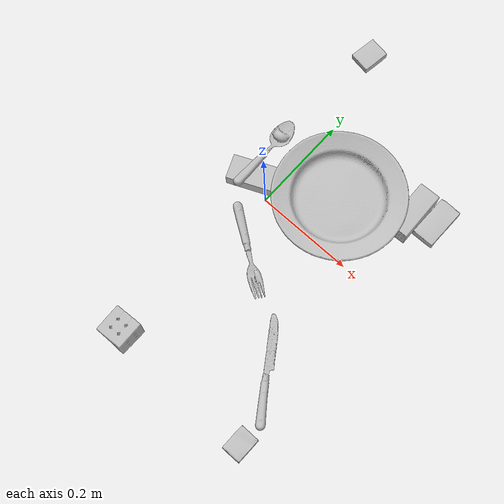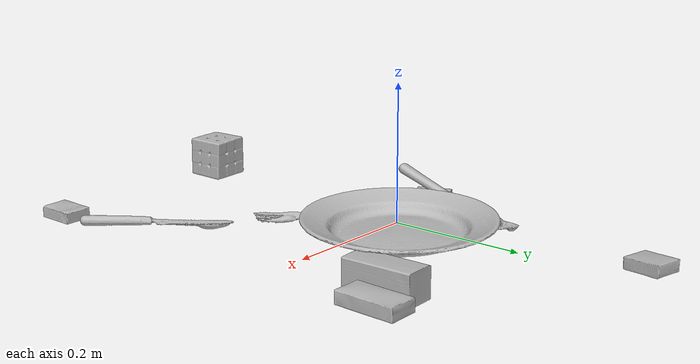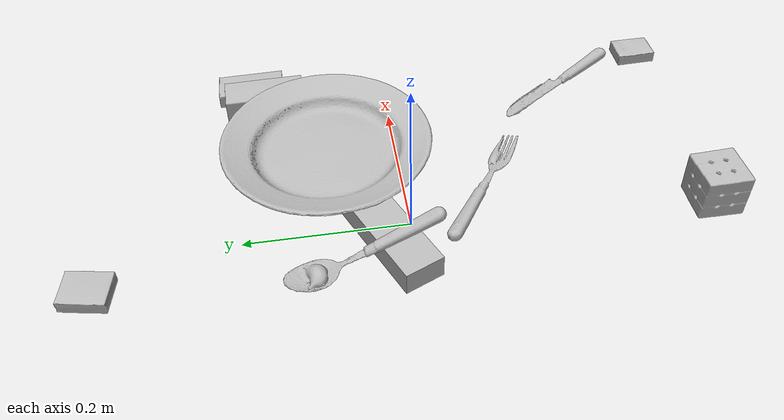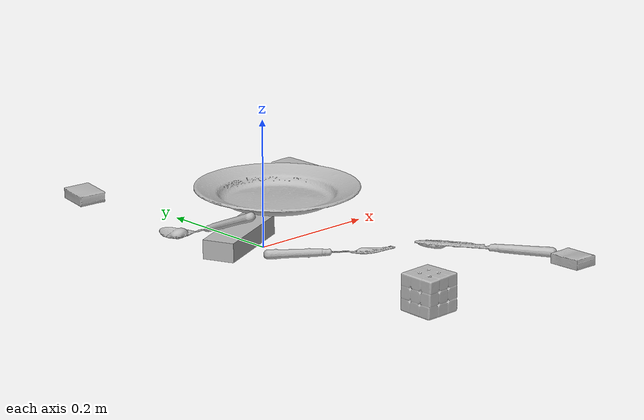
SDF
<sdf version="1.4">
  <world name="default">
    <light name="light1" type="point">
      <pose>0 0 1 0 0 0</pose>
      <diffuse>3 3 3 1</diffuse>
      <specular>3 3 3 1</specular>
    </light>
    <light name="light2" type="point">
      <pose>0 0.5 2 0 0 0</pose>
      <diffuse>1 1 1 1</diffuse>
      <specular>1 1 1 1</specular>
    </light>
    <light name="light3" type="point">
      <pose>0 0.5 2 0 0 0</pose>
      <diffuse>3 3 3 1</diffuse>
      <specular>3 3 3 1</specular>
    </light>
    <scene>
      <ambient>0.7 0.7 0.7</ambient>
    </scene>
    <model name="box11">
      <link name="link_box11">
        <collision name="default">
          <geometry>
            <mesh>
              <uri>model://pudding_box/collision_meshes/collision.obj</uri>
              <scale>0.5 0.5 0.5</scale>
            </mesh>
          </geometry>
          <surface>
            <friction>
              <ode>
                <mu>0.5</mu>
                <mu2>0.5</mu2>
              </ode>
            </friction>
          <contact>
        <ode>
            <max_vel>0</max_vel>
            <min_depth>0.0001</min_depth>
            <kp>1e8</kp>
        </ode>
    </contact></surface>
        </collision>
        <visual name="default">
          <geometry>
            <mesh>
              <uri>model://pudding_box/visual_meshes/visual.dae</uri>
              <scale>0.5 0.5 0.5</scale>
            </mesh>
          </geometry>
        </visual>
        <inertial>
          <mass>0.05641884729266167</mass>
          <pose>0.00024474109522998333 0.000403394311433658 -0.00025944141088984907 0.005213101771016666 -0.006603799659696515 0.020079828883224148</pose>
          <inertia>
            <ixx>1.5944652e-05</ixx>
            <iyy>1.0727675e-05</iyy>
            <izz>2.3546443e-05</izz>
            <ixy>0</ixy>
            <ixz>0</ixz>
            <iyz>0</iyz>
          </inertia>
        </inertial>
      </link>
      <pose>-0.04953507333993912 0.36727672815322876 0.00986290629953146 0.022348481827582162 -0.011391691917473893 -0.16350700214992533</pose>
    </model>
    <model name="box12">
      <link name="link_box12">
        <collision name="default">
          <geometry>
            <mesh>
              <uri>model://wood_block/collision_meshes/collision.obj</uri>
              <scale>0.5 0.5 0.5</scale>
            </mesh>
          </geometry>
          <surface>
            <friction>
              <ode>
                <mu>0.5</mu>
                <mu2>0.5</mu2>
              </ode>
            </friction>
          <contact>
        <ode>
            <max_vel>0</max_vel>
            <min_depth>0.0001</min_depth>
            <kp>1e8</kp>
        </ode>
    </contact></surface>
        </collision>
        <visual name="default">
          <geometry>
            <mesh>
              <uri>model://wood_block/visual_meshes/visual.dae</uri>
              <scale>0.5 0.5 0.5</scale>
            </mesh>
          </geometry>
        </visual>
        <inertial>
          <mass>0.1445801854133606</mass>
          <pose>-2.906657982748584e-06 -0.000285404734313488 0.00013204291462898254 -0.052208162951624955 -0.0051926954609686745 -0.006861377578377277</pose>
          <inertia>
            <ixx>4.836754e-05</ixx>
            <iyy>0.0001527931</iyy>
            <izz>0.00015222155</izz>
            <ixy>0</ixy>
            <ixz>0</ixz>
            <iyz>0</iyz>
          </inertia>
        </inertial>
      </link>
      <pose>0.23181800544261932 0.161280557513237 0.02266036532819271 -0.0020313515687817017 0.0076013832801280715 -1.5380556653300472</pose>
    </model>
    <model name="box13">
      <link name="link_box13">
        <collision name="default">
          <geometry>
            <mesh>
              <uri>model://sugar_box/collision_meshes/collision.obj</uri>
              <scale>0.5 0.5 0.5</scale>
            </mesh>
          </geometry>
          <surface>
            <friction>
              <ode>
                <mu>0.5</mu>
                <mu2>0.5</mu2>
              </ode>
            </friction>
          <contact>
        <ode>
            <max_vel>0</max_vel>
            <min_depth>0.0001</min_depth>
            <kp>1e8</kp>
        </ode>
    </contact></surface>
        </collision>
        <visual name="default">
          <geometry>
            <mesh>
              <uri>model://sugar_box/visual_meshes/visual.dae</uri>
              <scale>0.5 0.5 0.5</scale>
            </mesh>
          </geometry>
        </visual>
        <inertial>
          <mass>0.1187032163143158</mass>
          <pose>0.0005171863595023751 1.924554817378521e-05 -0.00018182402709499002 -0.0004046259512710581 0.0010506635216588768 0.002615378556274426</pose>
          <inertia>
            <ixx>2.4725794e-05</ixx>
            <iyy>7.991886e-05</iyy>
            <izz>9.567241e-05</izz>
            <ixy>0</ixy>
            <ixz>0</ixz>
            <iyz>0</iyz>
          </inertia>
        </inertial>
      </link>
      <pose>0.2771778404712677 0.1807623654603958 0.011425434611737728 -0.012390897159795093 -0.01786154389536398 -1.5707354208010122</pose>
    </model>
    <model name="box21">
      <link name="link_box21">
        <collision name="default">
          <geometry>
            <mesh>
              <uri>model://jenga/collision_meshes/collision.obj</uri>
              <scale>1.0 1.0 1.0</scale>
            </mesh>
          </geometry>
          <surface>
            <friction>
              <ode>
                <mu>0.5</mu>
                <mu2>0.5</mu2>
              </ode>
            </friction>
          <contact>
        <ode>
            <max_vel>0</max_vel>
            <min_depth>0.0001</min_depth>
            <kp>1e8</kp>
        </ode>
    </contact></surface>
        </collision>
        <visual name="default">
          <geometry>
            <mesh>
              <uri>model://jenga/visual_meshes/visual.dae</uri>
              <scale>1.0 1.0 1.0</scale>
            </mesh>
          </geometry>
        </visual>
        <inertial>
          <mass>0.20898528397083282</mass>
          <pose>-2.502855807051674e-07 -0.00010250010382151231 -4.092339804628864e-05 0.0 -7.342154049184251e-07 0.0</pose>
          <inertia>
            <ixx>5.7831294e-05</ixx>
            <iyy>0.0003918633</iyy>
            <izz>0.00041834736</izz>
            <ixy>0</ixy>
            <ixz>0</ixz>
            <iyz>0</iyz>
          </inertia>
        </inertial>
      </link>
      <pose>-0.022555023431777954 0.02910050004720688 0.014999531209468842 2.5344687264476442e-05 -9.313568861960412e-07 0.41541420880131247</pose>
    </model>
    <model name="box22">
      <link name="link_box22">
        <collision name="default">
          <geometry>
            <mesh>
              <uri>model://rubiks_cube/collision_meshes/collision.obj</uri>
              <scale>1.0 1.0 1.0</scale>
            </mesh>
          </geometry>
          <surface>
            <friction>
              <ode>
                <mu>0.5</mu>
                <mu2>0.5</mu2>
              </ode>
            </friction>
          <contact>
        <ode>
            <max_vel>0</max_vel>
            <min_depth>0.0001</min_depth>
            <kp>1e8</kp>
        </ode>
    </contact></surface>
        </collision>
        <visual name="default">
          <geometry>
            <mesh>
              <uri>model://rubiks_cube/visual_meshes/visual.dae</uri>
              <scale>1.0 1.0 1.0</scale>
            </mesh>
          </geometry>
        </visual>
        <inertial>
          <mass>0.28698527812957764</mass>
          <pose>2.6721041649580002e-05 5.2569666877388954e-05 -7.2643156272533815e-06 -0.05467256881712973 -0.09813902151902686 -0.034455808755049874</pose>
          <inertia>
            <ixx>0.00015857864</ixx>
            <iyy>0.00015783912</iyy>
            <izz>0.00015989273</izz>
            <ixy>0</ixy>
            <ixz>0</ixz>
            <iyz>0</iyz>
          </inertia>
        </inertial>
      </link>
      <pose>-0.019740041345357895 -0.36924442648887634 0.028678936883807182 -4.013936497710906e-06 -1.8187270799258849e-06 0.034958289161391286</pose>
    </model>
    <model name="box23">
      <link name="link_box23">
        <collision name="default">
          <geometry>
            <mesh>
              <uri>model://cracker_box/collision_meshes/collision.obj</uri>
              <scale>0.25 0.25 0.25</scale>
            </mesh>
          </geometry>
          <surface>
            <friction>
              <ode>
                <mu>0.5</mu>
                <mu2>0.5</mu2>
              </ode>
            </friction>
          <contact>
        <ode>
            <max_vel>0</max_vel>
            <min_depth>0.0001</min_depth>
            <kp>1e8</kp>
        </ode>
    </contact></surface>
        </collision>
        <visual name="default">
          <geometry>
            <mesh>
              <uri>model://cracker_box/visual_meshes/visual.dae</uri>
              <scale>0.25 0.25 0.25</scale>
            </mesh>
          </geometry>
        </visual>
        <inertial>
          <mass>0.04468085244297981</mass>
          <pose>0.00023660414444748312 6.358561222441494e-05 -0.0004257383698131889 -0.0003162076226327385 -0.011106488669128663 0.0025467943033026423</pose>
          <inertia>
            <ixx>7.10301e-06</ixx>
            <iyy>1.1728463e-05</iyy>
            <izz>1.6737597e-05</izz>
            <ixy>0</ixy>
            <ixz>0</ixz>
            <iyz>0</iyz>
          </inertia>
        </inertial>
      </link>
      <pose>0.2795219123363495 -0.3730859160423279 0.009120450355112553 -0.011788048282186879 -0.007367141816890228 -1.5706567965193083</pose>
    </model>
    <model name="plate1">
      <link name="link_plate1">
        <collision name="default">
          <geometry>
            <mesh>
              <uri>model://plate/collision_meshes/collision.obj</uri>
              <scale>1.0 1.0 1.0</scale>
            </mesh>
          </geometry>
          <surface>
            <friction>
              <ode>
                <mu>0.5</mu>
                <mu2>0.5</mu2>
              </ode>
            </friction>
          <contact>
        <ode>
            <max_vel>0</max_vel>
            <min_depth>0.0001</min_depth>
            <kp>1e8</kp>
        </ode>
    </contact></surface>
        </collision>
        <visual name="default">
          <geometry>
            <mesh>
              <uri>model://plate/visual_meshes/visual.dae</uri>
              <scale>1.0 1.0 1.0</scale>
            </mesh>
          </geometry>
        </visual>
        <inertial>
          <mass>0.20184239745140076</mass>
          <pose>-0.0006044648471288383 0.00027825962752103806 -0.0010561983799561858 0.0022188105697194356 -0.003225466439192432 0.4526020757977656</pose>
          <inertia>
            <ixx>0.00094422296</ixx>
            <iyy>0.00093519164</iyy>
            <izz>0.0018467589</izz>
            <ixy>0</ixy>
            <ixz>0</ixz>
            <iyz>0</iyz>
          </inertia>
        </inertial>
      </link>
      <pose>0.10973723977804184 0.08852124214172363 0.04237788915634155 -0.014239635578150145 0.009320329960594512 -0.34661082519782965</pose>
    </model>
    <model name="silverware1">
      <link name="link_silverware1">
        <collision name="default">
          <geometry>
            <mesh>
              <uri>model://fork/collision_meshes/collision.obj</uri>
              <scale>1.0 1.0 1.0</scale>
            </mesh>
          </geometry>
          <surface>
            <friction>
              <ode>
                <mu>0.5</mu>
                <mu2>0.5</mu2>
              </ode>
            </friction>
          <contact>
        <ode>
            <max_vel>0</max_vel>
            <min_depth>0.0001</min_depth>
            <kp>1e8</kp>
        </ode>
    </contact></surface>
        </collision>
        <visual name="default">
          <geometry>
            <mesh>
              <uri>model://fork/visual_meshes/visual.dae</uri>
              <scale>1.0 1.0 1.0</scale>
            </mesh>
          </geometry>
        </visual>
        <inertial>
          <mass>0.03151825815439224</mass>
          <pose>-0.029570046812295914 0.00046588233090005815 0.0003218861820641905 -0.013550990610422763 -0.010977834578584837 0.014453900606944525</pose>
          <inertia>
            <ixx>1.1048933e-06</ixx>
            <iyy>8.2285114e-05</iyy>
            <izz>8.2779305e-05</izz>
            <ixy>0</ixy>
            <ixz>0</ixz>
            <iyz>0</iyz>
          </inertia>
        </inertial>
      </link>
      <pose>0.04385286569595337 -0.09806075692176819 0.0057465615682303905 -0.19104840062534248 0.024091215822836208 -0.6071527853350186</pose>
    </model>
    <model name="silverware2">
      <link name="link_silverware2">
        <collision name="default">
          <geometry>
            <mesh>
              <uri>model://spoon/collision_meshes/collision.obj</uri>
              <scale>1.0 1.0 1.0</scale>
            </mesh>
          </geometry>
          <surface>
            <friction>
              <ode>
                <mu>0.5</mu>
                <mu2>0.5</mu2>
              </ode>
            </friction>
          <contact>
        <ode>
            <max_vel>0</max_vel>
            <min_depth>0.0001</min_depth>
            <kp>1e8</kp>
        </ode>
    </contact></surface>
        </collision>
        <visual name="default">
          <geometry>
            <mesh>
              <uri>model://spoon/visual_meshes/visual.dae</uri>
              <scale>1.0 1.0 1.0</scale>
            </mesh>
          </geometry>
        </visual>
        <inertial>
          <mass>0.04083608463406563</mass>
          <pose>-0.005526324734091759 -0.001603417913429439 -0.0007271658978424966 0.03521537575369321 -0.03906582415196765 0.006150608891198343</pose>
          <inertia>
            <ixx>2.2713682e-06</ixx>
            <iyy>0.0001553799</iyy>
            <izz>0.0001565001</izz>
            <ixy>0</ixy>
            <ixz>0</ixz>
            <iyz>0</iyz>
          </inertia>
        </inertial>
      </link>
      <pose>-0.06001058965921402 0.06029074266552925 0.03113960288465023 -0.06308741940625534 0.3932588226759517 1.6919752760688742</pose>
    </model>
    <model name="silverware3">
      <link name="link_silverware3">
        <collision name="default">
          <geometry>
            <mesh>
              <uri>model://knife/collision_meshes/collision.obj</uri>
              <scale>1.0 1.0 1.0</scale>
            </mesh>
          </geometry>
          <surface>
            <friction>
              <ode>
                <mu>0.5</mu>
                <mu2>0.5</mu2>
              </ode>
            </friction>
          <contact>
        <ode>
            <max_vel>0</max_vel>
            <min_depth>0.0001</min_depth>
            <kp>1e8</kp>
        </ode>
    </contact></surface>
        </collision>
        <visual name="default">
          <geometry>
            <mesh>
              <uri>model://knife/visual_meshes/visual.dae</uri>
              <scale>1.0 1.0 1.0</scale>
            </mesh>
          </geometry>
        </visual>
        <inertial>
          <mass>0.024411516264081</mass>
          <pose>-0.023785248398780823 0.0015275123296305537 5.062021955382079e-05 0.07305335097392199 0.01724841144103926 -0.007409823891069756</pose>
          <inertia>
            <ixx>6.9289786e-07</ixx>
            <iyy>9.37851e-05</iyy>
            <izz>9.400826e-05</izz>
            <ixy>0</ixy>
            <ixz>0</ixz>
            <iyz>0</iyz>
          </inertia>
        </inertial>
      </link>
      <pose>0.2284117043018341 -0.24365518987178802 0.007946574129164219 -0.023843905260664496 -0.014543236122636027 2.175616241903657</pose>
    </model>
  <physics type="ode">
      <max_contacts>50</max_contacts>
      <ode>
        <solver>
          <type>quick</type>
          <iters>75</iters>
        </solver>
        <constraints>
          <contact_max_correcting_vel>0</contact_max_correcting_vel>
          <contact_surface_layer>0</contact_surface_layer>
        </constraints>
      </ode>
    </physics></world>
</sdf>
